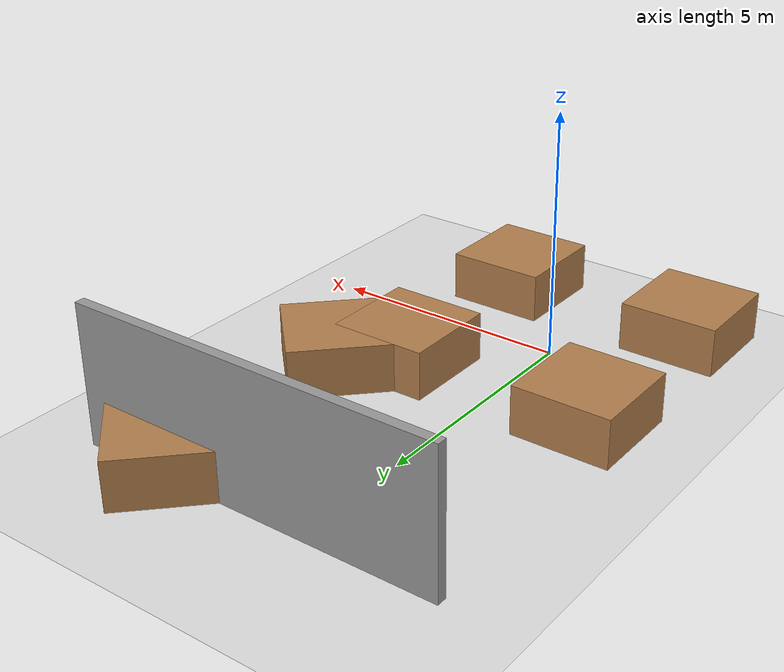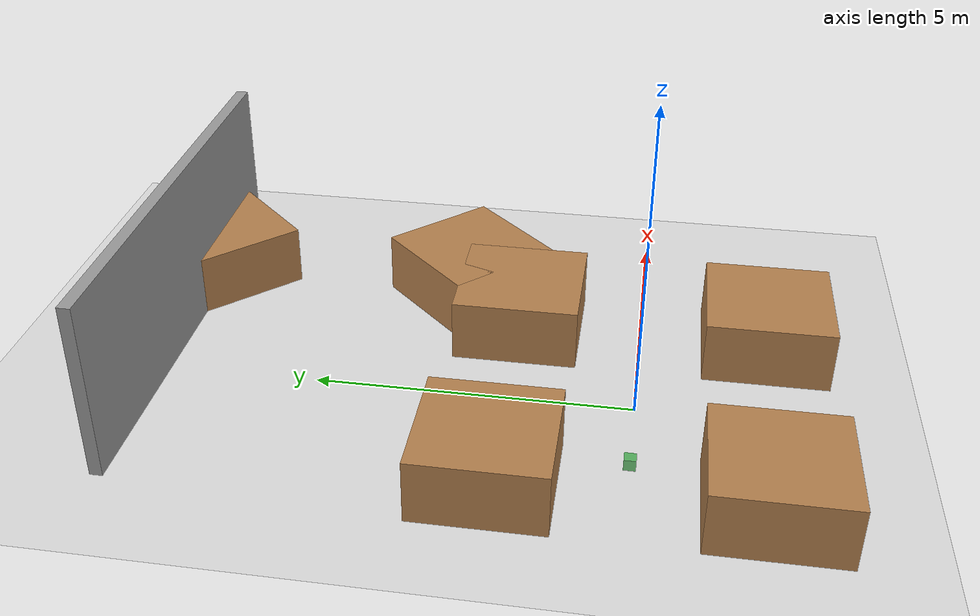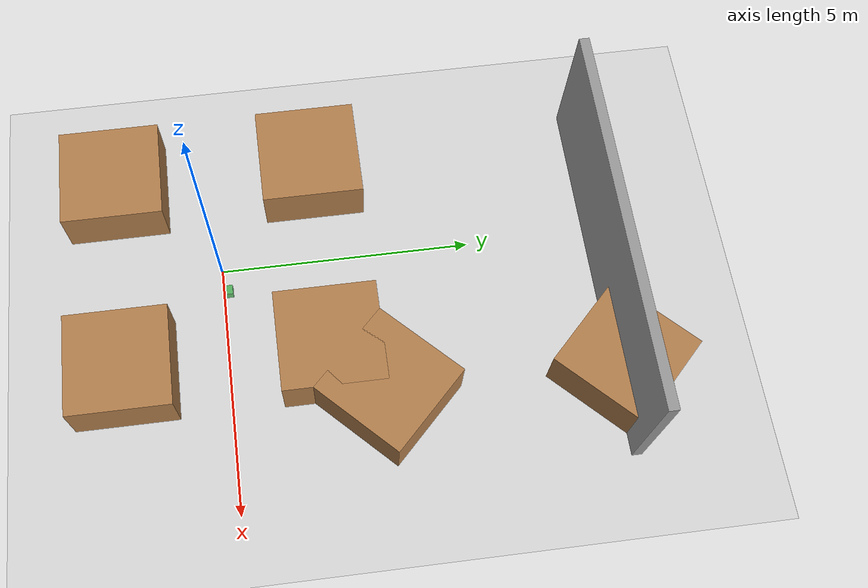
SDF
<sdf version="1.4">
 <world name="default">
  <include><uri>model://sun</uri></include>
  <include><uri>model://ground_plane</uri></include>
  <physics type="ode">
   <max_step_size>0.01</max_step_size>
   <real_time_factor>1</real_time_factor>
   <real_time_update_rate>100</real_time_update_rate>
   <gravity>0 0 -9.8</gravity>
  </physics>
  <model name="rat_goal">
   <static>1</static>
   <link name="rat_goal_link">
    <visual name="visual">
     <geometry><box><size>0.2 0.2 0.2</size></box></geometry>
     <material>
      <script><uri>file://media/materials/scripts/gazebo.material</uri><name>Gazebo/Green</name></script>
     </material>
    </visual>
    <gravity>0</gravity>
   </link>
   <pose>0 0 -1 0 0 0</pose>
  </model>
  <model name="box_01">
   <static>1</static>
   <link name="link">
    <visual name="visual">
     <geometry><box><size>2 2 1</size></box></geometry>
     <material>
      <script><uri>file://media/materials/scripts/gazebo.material</uri><name>Gazebo/Wood</name></script>
     </material>
    </visual>
    <collision name="main"><geometry><box><size>2 2 1</size></box></geometry></collision>
    <inertial><mass>1</mass></inertial>
    <velocity_decay><linear>0</linear><angular>0</angular></velocity_decay>
   </link>
   <pose>-2 -2 0.5 0 0 0</pose>
  </model>
  <model name="box_02">
   <static>1</static>
   <link name="link">
    <visual name="visual">
     <geometry><box><size>2 2 1</size></box></geometry>
     <material>
      <script><uri>file://media/materials/scripts/gazebo.material</uri><name>Gazebo/Wood</name></script>
     </material>
    </visual>
    <collision name="main"><geometry><box><size>2 2 1</size></box></geometry></collision>
    <inertial><mass>1</mass></inertial>
    <velocity_decay><linear>0</linear><angular>0</angular></velocity_decay>
   </link>
   <pose>-2 2 0.5 0 0 0</pose>
  </model>
  <model name="box_03">
   <static>1</static>
   <link name="link">
    <visual name="visual">
     <geometry><box><size>2 2 1</size></box></geometry>
     <material>
      <script><uri>file://media/materials/scripts/gazebo.material</uri><name>Gazebo/Wood</name></script>
     </material>
    </visual>
    <collision name="main"><geometry><box><size>2 2 1</size></box></geometry></collision>
    <inertial><mass>1</mass></inertial>
    <velocity_decay><linear>0</linear><angular>0</angular></velocity_decay>
   </link>
   <pose>2 2 0.5 0 0 0</pose>
  </model>
  <model name="box_04">
   <static>1</static>
   <link name="link">
    <visual name="visual">
     <geometry><box><size>2 2 1</size></box></geometry>
     <material>
      <script><uri>file://media/materials/scripts/gazebo.material</uri><name>Gazebo/Wood</name></script>
     </material>
    </visual>
    <collision name="main"><geometry><box><size>2 2 1</size></box></geometry></collision>
    <inertial><mass>1</mass></inertial>
    <velocity_decay><linear>0</linear><angular>0</angular></velocity_decay>
   </link>
   <pose>2 -2 0.5 0 0 0</pose>
  </model>
  <model name="box_05">
   <static>1</static>
   <link name="link">
    <visual name="visual">
     <geometry><box><size>2 2 1</size></box></geometry>
     <material>
      <script><uri>file://media/materials/scripts/gazebo.material</uri><name>Gazebo/Wood</name></script>
     </material>
    </visual>
    <collision name="main"><geometry><box><size>2 2 1</size></box></geometry></collision>
    <inertial><mass>1</mass></inertial>
    <velocity_decay><linear>0</linear><angular>0</angular></velocity_decay>
   </link>
   <pose>3 3 0.5 0 0 0.7853981</pose>
  </model>
  <model name="box_06">
   <static>1</static>
   <link name="link">
    <visual name="visual">
     <geometry><box><size>2 2 1</size></box></geometry>
     <material>
      <script><uri>file://media/materials/scripts/gazebo.material</uri><name>Gazebo/Wood</name></script>
     </material>
    </visual>
    <collision name="main"><geometry><box><size>2 2 1</size></box></geometry></collision>
    <inertial><mass>1</mass></inertial>
    <velocity_decay><linear>0</linear><angular>0</angular></velocity_decay>
   </link>
   <pose>3 7.5 0.5 0 0 0.7853981</pose>
  </model>
  <model name="grey_wall">
   <static>1</static>
   <link name="link">
    <pose>0 0 1.4 0 -0 0</pose>
    <collision name="collision"><geometry><box><size>7.5 0.2 2.8</size></box></geometry></collision>
    <visual name="visual">
     <cast_shadows>0</cast_shadows>
     <geometry><box><size>7.5 0.2 2.8</size></box></geometry>
     <material>
      <script>
       <uri>model://grey_wall/materials/scripts</uri>
       <uri>model://grey_wall/materials/textures</uri>
       <name>vrc/grey_wall</name>
      </script>
     </material>
    </visual>
    <velocity_decay><linear>0</linear><angular>0</angular></velocity_decay>
   </link>
   <pose>1 7.5 0 0 -0 0</pose>
  </model>
 </world>
</sdf>
